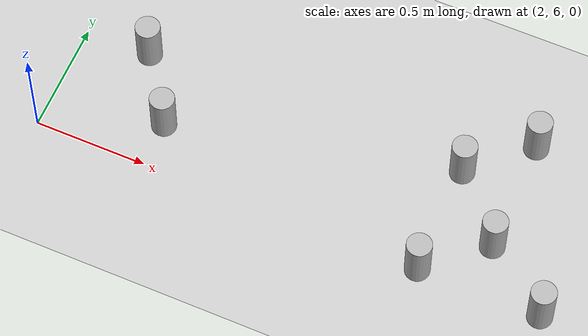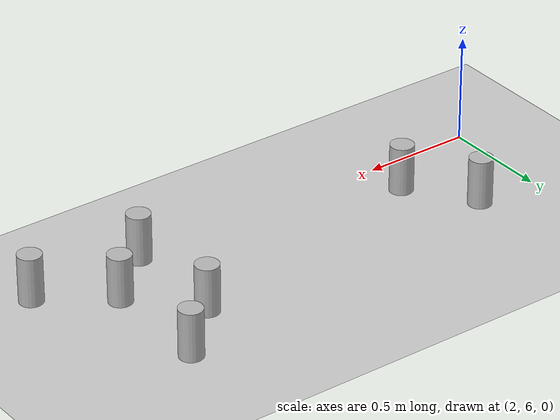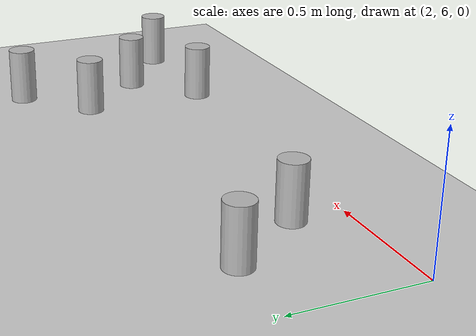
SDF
<sdf version="1.6">
 <world name="default">
  <model name="ground_plane">
   <static>1</static>
   <link name="link">
    <collision name="collision">
     <geometry><plane><normal>0 0 1</normal><size>100 100</size></plane></geometry>
     <surface><friction><ode><mu>100</mu><mu2>50</mu2></ode></friction></surface>
    </collision>
    <visual name="visual">
     <cast_shadows>0</cast_shadows>
     <geometry><plane><normal>0 0 1</normal><size>100 100</size></plane></geometry>
     <material>
      <script><uri>file://media/materials/scripts/gazebo.material</uri><name>Gazebo/Grey</name></script>
     </material>
    </visual>
   </link>
  </model>
  <model name="can4.297248351666.0">
   <link name="link">
    <pose>0 0 0.115 0 -0 0</pose>
    <inertial>
     <mass>0.39</mass>
     <inertia><ixx>0.00058</ixx><ixy>0</ixy><ixz>0</ixz><iyy>0.00058</iyy><iyz>0</iyz><izz>0.00019</izz></inertia>
    </inertial>
    <collision name="collision">
     <geometry><cylinder><radius>0.055</radius><length>0.23</length></cylinder></geometry>
    </collision>
    <visual name="visual">
     <geometry><cylinder><radius>0.055</radius><length>0.23</length></cylinder></geometry>
     <material>
      <script>
       <uri>model://beer/materials/scripts</uri>
       <uri>model://beer/materials/textures</uri>
       <name>Beer/Diffuse</name>
      </script>
     </material>
    </visual>
   </link>
   <pose>4.29724835166 6.0 -2e-06 1e-06 0 -9.5e-05</pose>
  </model>
  <model name="can2.295947064536.5">
   <link name="link">
    <pose>0 0 0.115 0 -0 0</pose>
    <inertial>
     <mass>0.39</mass>
     <inertia><ixx>0.00058</ixx><ixy>0</ixy><ixz>0</ixz><iyy>0.00058</iyy><iyz>0</iyz><izz>0.00019</izz></inertia>
    </inertial>
    <collision name="collision">
     <geometry><cylinder><radius>0.055</radius><length>0.23</length></cylinder></geometry>
    </collision>
    <visual name="visual">
     <geometry><cylinder><radius>0.055</radius><length>0.23</length></cylinder></geometry>
     <material>
      <script>
       <uri>model://beer/materials/scripts</uri>
       <uri>model://beer/materials/textures</uri>
       <name>Beer/Diffuse</name>
      </script>
     </material>
    </visual>
   </link>
   <pose>2.29594706453 6.5 -2e-06 1e-06 0 -9.5e-05</pose>
  </model>
  <model name="can2.56.2055914505">
   <link name="link">
    <pose>0 0 0.115 0 -0 0</pose>
    <inertial>
     <mass>0.39</mass>
     <inertia><ixx>0.00058</ixx><ixy>0</ixy><ixz>0</ixz><iyy>0.00058</iyy><iyz>0</iyz><izz>0.00019</izz></inertia>
    </inertial>
    <collision name="collision">
     <geometry><cylinder><radius>0.055</radius><length>0.23</length></cylinder></geometry>
    </collision>
    <visual name="visual">
     <geometry><cylinder><radius>0.055</radius><length>0.23</length></cylinder></geometry>
     <material>
      <script>
       <uri>model://beer/materials/scripts</uri>
       <uri>model://beer/materials/textures</uri>
       <name>Beer/Diffuse</name>
      </script>
     </material>
    </visual>
   </link>
   <pose>2.5 6.2055914505 -2e-06 1e-06 0 -9.5e-05</pose>
  </model>
  <model name="can4.06.22246311009">
   <link name="link">
    <pose>0 0 0.115 0 -0 0</pose>
    <inertial>
     <mass>0.39</mass>
     <inertia><ixx>0.00058</ixx><ixy>0</ixy><ixz>0</ixz><iyy>0.00058</iyy><iyz>0</iyz><izz>0.00019</izz></inertia>
    </inertial>
    <collision name="collision">
     <geometry><cylinder><radius>0.055</radius><length>0.23</length></cylinder></geometry>
    </collision>
    <visual name="visual">
     <geometry><cylinder><radius>0.055</radius><length>0.23</length></cylinder></geometry>
     <material>
      <script>
       <uri>model://beer/materials/scripts</uri>
       <uri>model://beer/materials/textures</uri>
       <name>Beer/Diffuse</name>
      </script>
     </material>
    </visual>
   </link>
   <pose>4.0 6.22246311009 -2e-06 1e-06 0 -9.5e-05</pose>
  </model>
  <model name="can3.753910058986.5">
   <link name="link">
    <pose>0 0 0.115 0 -0 0</pose>
    <inertial>
     <mass>0.39</mass>
     <inertia><ixx>0.00058</ixx><ixy>0</ixy><ixz>0</ixz><iyy>0.00058</iyy><iyz>0</iyz><izz>0.00019</izz></inertia>
    </inertial>
    <collision name="collision">
     <geometry><cylinder><radius>0.055</radius><length>0.23</length></cylinder></geometry>
    </collision>
    <visual name="visual">
     <geometry><cylinder><radius>0.055</radius><length>0.23</length></cylinder></geometry>
     <material>
      <script>
       <uri>model://beer/materials/scripts</uri>
       <uri>model://beer/materials/textures</uri>
       <name>Beer/Diffuse</name>
      </script>
     </material>
    </visual>
   </link>
   <pose>3.75391005898 6.5 -2e-06 1e-06 0 -9.5e-05</pose>
  </model>
  <model name="can4.06.73276784621">
   <link name="link">
    <pose>0 0 0.115 0 -0 0</pose>
    <inertial>
     <mass>0.39</mass>
     <inertia><ixx>0.00058</ixx><ixy>0</ixy><ixz>0</ixz><iyy>0.00058</iyy><iyz>0</iyz><izz>0.00019</izz></inertia>
    </inertial>
    <collision name="collision">
     <geometry><cylinder><radius>0.055</radius><length>0.23</length></cylinder></geometry>
    </collision>
    <visual name="visual">
     <geometry><cylinder><radius>0.055</radius><length>0.23</length></cylinder></geometry>
     <material>
      <script>
       <uri>model://beer/materials/scripts</uri>
       <uri>model://beer/materials/textures</uri>
       <name>Beer/Diffuse</name>
      </script>
     </material>
    </visual>
   </link>
   <pose>4.0 6.73276784621 -2e-06 1e-06 0 -9.5e-05</pose>
  </model>
  <model name="can3.753153738336.0">
   <link name="link">
    <pose>0 0 0.115 0 -0 0</pose>
    <inertial>
     <mass>0.39</mass>
     <inertia><ixx>0.00058</ixx><ixy>0</ixy><ixz>0</ixz><iyy>0.00058</iyy><iyz>0</iyz><izz>0.00019</izz></inertia>
    </inertial>
    <collision name="collision">
     <geometry><cylinder><radius>0.055</radius><length>0.23</length></cylinder></geometry>
    </collision>
    <visual name="visual">
     <geometry><cylinder><radius>0.055</radius><length>0.23</length></cylinder></geometry>
     <material>
      <script>
       <uri>model://beer/materials/scripts</uri>
       <uri>model://beer/materials/textures</uri>
       <name>Beer/Diffuse</name>
      </script>
     </material>
    </visual>
   </link>
   <pose>3.75315373833 6.0 -2e-06 1e-06 0 -9.5e-05</pose>
  </model>
 </world>
</sdf>
